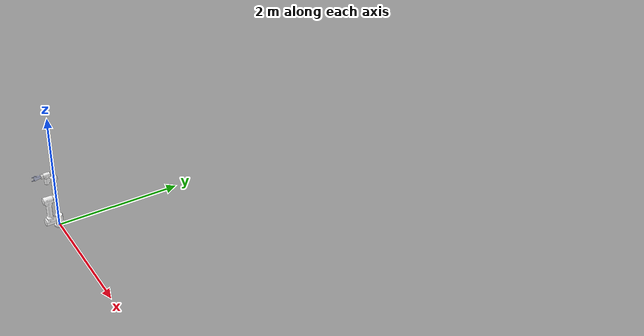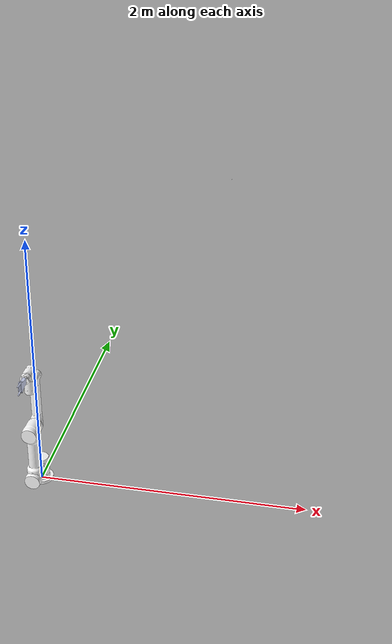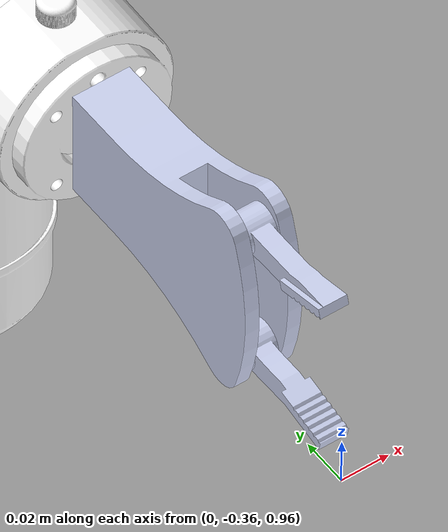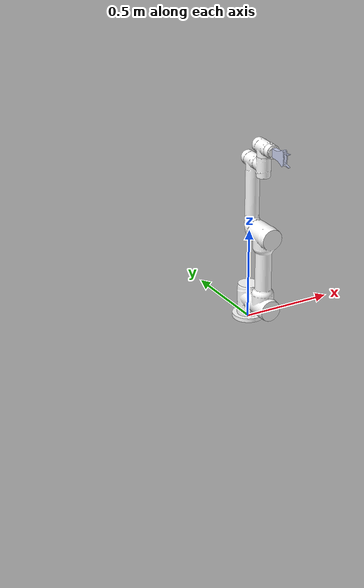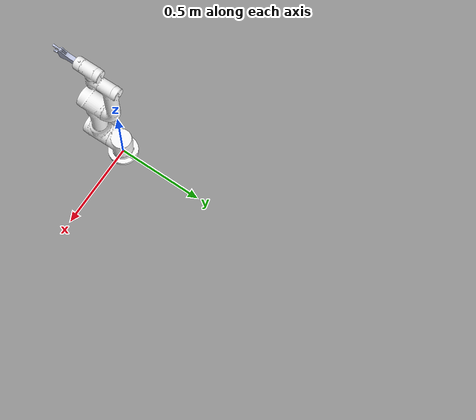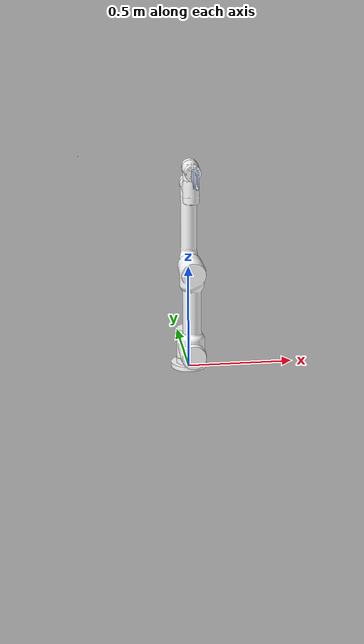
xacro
<?xml version="1.0"?>
<robot name="aubo_i5" xmlns:xacro="http://www.ros.org/wiki/xacro">
  <xacro:property name="M_PI" value="3.14159"/>

  <xacro:include filename="$(find aubo_description)/urdf/jiazhua.urdf" />
  <xacro:include filename="$(find aubo_description)/urdf/arm.xacro" />

    <joint name="ee_link_joint" type="fixed">
        <origin xyz="0 0 0" rpy="0 0 0 " />
        <parent link="wrist3_Link" />
        <child  link="gripper_base_link" />
    </joint>

</robot>

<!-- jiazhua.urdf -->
<robot name="jiazhua">

  <link name="gripper_base_link">
    <inertial>
      <origin xyz="0.0012 2.42861286636753E-17 0.0475830266682981" rpy="0 0 0" />
      <mass value="0.10588615547803" />
      <inertia
        ixx="0.000120405813410356"
        ixy="-3.77401154477319E-21"
        ixz="3.59933442415666E-21"
        iyy="9.48339427252608E-05"
        iyz="-1.11428968367808E-20"
        izz="3.86432252264647E-05" />
    </inertial>
    <visual>
      <origin xyz="0 0 0" rpy="0 0 0" />
      <geometry>
        <mesh filename="package://aubo_description/meshes/jiazhua/base_link.STL" />
      </geometry>
      <material name="jiazhua_bask_link_material">
        <color rgba="0.792156862745098 0.819607843137255 0.933333333333333 1" />
      </material>
    </visual>
    <collision>
      <origin  xyz="0 0 0" rpy="0 0 0" />
      <geometry>
        <mesh filename="package://aubo_description/meshes/jiazhua/base_link.STL" />
      </geometry>
    </collision>
  </link>
  <link  name="Link1">
    <inertial>
      <origin xyz="0.00188050176688574 -0.00120387769826689 0.0150298969423478" rpy="0 0 0" />
      <mass value="0.0054287821000724" />
      <inertia
        ixx="1.43577242109414E-06"
        ixy="9.68992808778747E-11"
        ixz="-2.28401464592307E-07"
        iyy="1.47943037043788E-06"
        iyz="4.56593730463517E-10"
        izz="1.48811775578354E-07" />
    </inertial>
    <visual>
      <origin xyz="0 0 0" rpy="0 0 0" />
      <geometry>
        <mesh filename="package://aubo_description/meshes/jiazhua/Link1.STL" />
      </geometry>
      <material name="link1_material">
        <color rgba="0.792156862745098 0.819607843137255 0.933333333333333 1" />
      </material>
    </visual>
    <collision>
      <origin xyz="0 0 0" rpy="0 0 0" />
      <geometry>
        <mesh filename="package://aubo_description/meshes/jiazhua/Link1.STL" />
      </geometry>
    </collision>
  </link>
  <!--
    The two fingers rotate about their local Y axes.  Because the finger joint
    frames have opposite yaw angles, equal positive joint commands produce a
    symmetric closing motion.
  -->
  <joint name="joint1" type="revolute">
    <origin xyz="0 -0.029 0.0892076231496363" rpy="0 -0.228448582107719 1.5707963267949" />
    <parent  link="gripper_base_link" />
    <child link="Link1" />
    <axis xyz="0 1 0" />
    <limit lower="0.0" upper="0.55" effort="20.0" velocity="1.0" />
    <dynamics damping="0.15" friction="0.05" />
  </joint>
  <link name="Link2">
    <inertial>
      <origin xyz="0.00184644766642264 0.00119612230173309 0.0148207361975697" rpy="0 0 0" />
      <mass  value="0.00542878210007239" />
      <inertia
        ixx="1.43577242109413E-06"
        ixy="9.68992808778728E-11"
        ixz="-2.28401464592308E-07"
        iyy="1.47943037043787E-06"
        iyz="4.56593730463535E-10"
        izz="1.48811775578354E-07" />
    </inertial>
    <visual>
      <origin xyz="0 0 0" rpy="0 0 0" />
      <geometry>
        <mesh filename="package://aubo_description/meshes/jiazhua/Link2.STL" />
      </geometry>
      <material name="link2_material">
        <color rgba="0.792156862745098 0.819607843137255 0.933333333333333 1" />
      </material>
    </visual>
    <collision>
      <origin xyz="0 0 0" rpy="0 0 0" />
      <geometry>
        <mesh filename="package://aubo_description/meshes/jiazhua/Link2.STL" />
      </geometry>
    </collision>
  </link>
  <joint name="joint2" type="revolute">
    <origin xyz="0 0.029 0.0892076231496363" rpy="0 -0.252554771757915 -1.5707963267949" />
    <parent link="gripper_base_link" />
    <child link="Link2" />
    <axis xyz="0 1 0" />
    <limit lower="0.0" upper="0.55" effort="20.0" velocity="1.0" />
    <dynamics damping="0.15" friction="0.05" />
  </joint>

  <joint name="gripper_joint" type="fixed">
      <origin xyz="0 0 0.12" rpy="0 0 0"/>
      <parent link="gripper_base_link"/>
      <child link="gripper_link"/>
  </joint>
  <link name="gripper_link" />

  <!-- Tool centre point between and slightly in front of the fingertips.
       Keep gripper_link for compatibility and use tcp_link as the MoveIt tip. -->
  <joint name="tcp_joint" type="fixed">
      <origin xyz="0 0 0" rpy="0 0 0"/>
      <parent link="gripper_link"/>
      <child link="tcp_link"/>
  </joint>
  <link name="tcp_link" />

  <!-- Contact parameters for grasping lightweight objects in Gazebo. -->
  <gazebo reference="Link1">
    <mu1>20.0</mu1>
    <mu2>20.0</mu2>
    <kp>1000000</kp>
    <kd>100</kd>
    <minDepth>0.002</minDepth>
    <maxVel>0.01</maxVel>
  </gazebo>
  <gazebo reference="Link2">
    <mu1>20.0</mu1>
    <mu2>20.0</mu2>
    <kp>1000000</kp>
    <kd>100</kd>
    <minDepth>0.002</minDepth>
    <maxVel>0.01</maxVel>
  </gazebo>

  <!-- ros_control transmissions used by Gazebo and compatible hardware interfaces. -->
  <transmission name="joint1_trans">
    <type>transmission_interface/SimpleTransmission</type>
    <joint name="joint1">
      <hardwareInterface>hardware_interface/PositionJointInterface</hardwareInterface>
    </joint>
    <actuator name="joint1_motor">
      <hardwareInterface>hardware_interface/PositionJointInterface</hardwareInterface>
      <mechanicalReduction>1</mechanicalReduction>
    </actuator>
  </transmission>
  <transmission name="joint2_trans">
    <type>transmission_interface/SimpleTransmission</type>
    <joint name="joint2">
      <hardwareInterface>hardware_interface/PositionJointInterface</hardwareInterface>
    </joint>
    <actuator name="joint2_motor">
      <hardwareInterface>hardware_interface/PositionJointInterface</hardwareInterface>
      <mechanicalReduction>1</mechanicalReduction>
    </actuator>
  </transmission>
</robot>

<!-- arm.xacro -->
<robot name="aubo_i5" xmlns:xacro="http://ros.org/wiki/xacro">

 <!-- Defining the colors used in this robot -->
    <material name="Black">
        <color rgba="0 0 0 1"/>
    </material>

    <material name="White">
        <color rgba="1 1 1 1"/>
    </material>

    <material name="Blue">
        <color rgba="0 0 1 1"/>
    </material>

    <material name="Red">
        <color rgba="1 0 0 1"/>
    </material>

    <material name="Grey">
        <color rgba="0.96 0.96 0.96 1"/>
    </material>

    <!-- Constants -->
    <xacro:property name="M_PI" value="3.14159"/>

    <!--/////////////////// DYNAMICS PARAM //////////////////////-->

    <xacro:macro name="I5_Shoulder_Inertia">
        <origin xyz="0.0 0.006 -0.002"
                rpy="0 0 0" />
        <mass value="5.05" />
        <inertia ixx="0.0148"
                 ixy="0"
                 ixz="0"
                 iyy="0.0143"
                 iyz="-0.0"
                 izz="0.0095" />
    </xacro:macro>

    <xacro:macro name="I5_UpperArm_Inertia">
        <origin xyz="0.304 0.0 -0.03"
                rpy="0 0 0" />
        <mass value="11.90" />
        <inertia ixx="0.0305"
                 ixy="0"
                 ixz="0"
                 iyy="0.4505"
                 iyz="0"
                 izz="0.0095" />
    </xacro:macro>

    <xacro:macro name="I5_ForeArm_Inertia">
        <origin xyz="0.415 0.0 0.0992"
                rpy="0 0 0" />
        <mass  value="3.3" />
        <inertia ixx="0.0033"
                 ixy="0"
                 ixz="0.0009"
                 iyy="0.0575"
                 iyz="0"
                 izz="0.0565" />
    </xacro:macro>

    <xacro:macro name="I5_Wrist1_Inertia">
        <origin xyz="0.0 0.0028 -0.003"
                rpy="0 0 0" />
        <mass value="1.62" />
        <inertia ixx="0.0023"
                 ixy="0"
                 ixz="0"
                 iyy="0.0013"
                 iyz="0.0"
                 izz="0.0022" />
    </xacro:macro>

    <xacro:macro name="I5_Wrist2_Inertia">
        <origin xyz="0.0 -0.0028 -0.003"
                rpy="0 0 0" />
        <mass value="1.62" />
        <inertia ixx="0.0023"
                 ixy="0"
                 ixz="0"
                 iyy="0.0013"
                 iyz="0.0"
                 izz="0.0022" />
    </xacro:macro>

    <xacro:macro name="I5_Wrist3_Inertia">
        <origin xyz="0.0 0.0 -0.0071"
                rpy="0 0 0" />
        <mass value="0.40" />
        <inertia ixx="0.013939"
                 ixy="0"
                 ixz="0"
                 iyy="0.013988"
                 iyz="0.0"
                 izz="0.0224092" />
    </xacro:macro>

    <!--/////////////////////////////// BASE_LINK ////////////////////////////////////-->

   <link name="base_link">
    <inertial>
      <origin xyz="-1.4795E-13 0.0015384 0.020951" rpy="0 0 0" />
      <mass value="0.83419" />
      <inertia ixx="0.0014414" ixy="7.8809E-15" ixz="8.5328E-16" iyy="0.0013542" iyz="-1.4364E-05" izz="0.0024659" />
    </inertial>
    <visual>
      <origin xyz="0 0 0" rpy="0 0 0" />
      <geometry>
        <mesh filename="package://aubo_description/meshes/aubo_i5/visual/base_link.DAE" />
      </geometry>
      <material name="">
        <color rgba="1 1 1 1" />
      </material>
    </visual>
    <collision>
      <origin xyz="0 0 0" rpy="0 0 0" />
      <geometry>
        <mesh filename="package://aubo_description/meshes/aubo_i5/collision/base_link.STL" />
      </geometry>
    </collision>
  </link>

  <!--/////////////////////////////// SHOULDER_LINK ////////////////////////////////////-->
  <link name="shoulder_Link">
    <inertial>
      <xacro:I5_Shoulder_Inertia />
    </inertial>
    <visual>
      <origin xyz="0 0 0" rpy="0 0 0" />
      <geometry>
        <mesh filename="package://aubo_description/meshes/aubo_i5/visual/shoulder_Link.DAE" />
      </geometry>
      <material name="">
        <color rgba="1 1 1 1" />
      </material>
    </visual>
    <collision>
      <origin xyz="0 0 0" rpy="0 0 0" />
      <geometry>
        <mesh filename="package://aubo_description/meshes/aubo_i5/collision/shoulder_Link.STL" />
      </geometry>
    </collision>
  </link>

  <!--/////////////////////////////// SHOULDER_JOINT ////////////////////////////////////-->
  <joint name="shoulder_joint" type="revolute">
    <origin xyz="0 0 0.122" rpy="0 0 3.1416" />
    <parent link="base_link" />
    <child link="shoulder_Link" />
    <axis xyz="0 0 1" />
    <limit lower="-3.04" upper="3.04" effort="300" velocity="100" />
  </joint>

  <!--/////////////////////////////// UPPERARM_LINK ////////////////////////////////////-->
  <link name="upperArm_Link">
    <inertial>
      <xacro:I5_UpperArm_Inertia />
    </inertial>
    <visual>
      <origin xyz="0 0 0" rpy="0 0 0" />
      <geometry>
        <mesh filename="package://aubo_description/meshes/aubo_i5/visual/upperArm_Link.DAE" />
      </geometry>
      <material name="">
        <color rgba="1 1 1 1" />
      </material>
    </visual>
    <collision>
      <origin xyz="0 0 0" rpy="0 0 0" />
      <geometry>
        <mesh filename="package://aubo_description/meshes/aubo_i5/collision/upperArm_Link.STL" />
      </geometry>
    </collision>
  </link>

  <!--/////////////////////////////// UPPERARM_JOINT ////////////////////////////////////-->
  <joint name="upperArm_joint" type="revolute">
    <origin xyz="0 0.1215 0" rpy="-1.5708 -1.5708 0" />
    <parent link="shoulder_Link" />
    <child link="upperArm_Link" />
    <axis xyz="0 0 1" />
    <limit lower="-3.04" upper="3.04" effort="300" velocity="100" />
  </joint>

  <!--/////////////////////////////// FOREARM_LINK ////////////////////////////////////-->
  <link name="foreArm_Link">
    <inertial>
      <xacro:I5_ForeArm_Inertia />
    </inertial>
    <visual>
      <origin xyz="0 0 0" rpy="0 0 0" />
      <geometry>
        <mesh filename="package://aubo_description/meshes/aubo_i5/visual/foreArm_Link.DAE" />
      </geometry>
      <material name="">
        <color rgba="1 1 1 1" />
      </material>
    </visual>
    <collision>
      <origin xyz="0 0 0" rpy="0 0 0" />
      <geometry>
        <mesh filename="package://aubo_description/meshes/aubo_i5/collision/foreArm_Link.STL" />
      </geometry>
    </collision>
  </link>

  <!--/////////////////////////////// FOREARM_JOINT ////////////////////////////////////-->
  <joint name="foreArm_joint" type="revolute">
    <origin xyz="0.408 0 0" rpy="-3.1416 -5.1632E-18 -5.459E-16" />
    <parent link="upperArm_Link" />
    <child link="foreArm_Link" />
    <axis xyz="0 0 1" />
    <limit lower="-3.04" upper="3.04" effort="300" velocity="100" />
  </joint>

  <!--/////////////////////////////// WRIST1_LINK ////////////////////////////////////-->
  <link name="wrist1_Link">
    <inertial>
      <xacro:I5_Wrist1_Inertia />
    </inertial>
    <visual>
      <origin xyz="0 0 0" rpy="0 0 0" />
      <geometry>
        <mesh filename="package://aubo_description/meshes/aubo_i5/visual/wrist1_Link.DAE" />
      </geometry>
      <material name="">
        <color rgba="1 1 1 1" />
      </material>
    </visual>
    <collision>
      <origin xyz="0 0 0" rpy="0 0 0" />
      <geometry>
        <mesh filename="package://aubo_description/meshes/aubo_i5/collision/wrist1_Link.STL" />
      </geometry>
    </collision>
  </link>

  <!--/////////////////////////////// WRIST1_JOINT ////////////////////////////////////-->
  <joint name="wrist1_joint" type="revolute">
    <origin xyz="0.376 0 0" rpy="3.1416 -1.8323E-15 1.5708" />
    <parent link="foreArm_Link" />
    <child link="wrist1_Link" />
    <axis xyz="0 0 1" />
    <limit lower="-3.04" upper="3.04" effort="300" velocity="100" />
  </joint>

  <!--/////////////////////////////// WRIST2_LINK ////////////////////////////////////-->
  <link name="wrist2_Link">
    <inertial>
      <xacro:I5_Wrist2_Inertia />
    </inertial>
    <visual>
      <origin xyz="0 0 0" rpy="0 0 0" />
      <geometry>
        <mesh filename="package://aubo_description/meshes/aubo_i5/visual/wrist2_Link.DAE" />
      </geometry>
      <material name="">
        <color rgba="1 1 1 1" />
      </material>
    </visual>
    <collision>
      <origin xyz="0 0 0" rpy="0 0 0" />
      <geometry>
        <mesh filename="package://aubo_description/meshes/aubo_i5/collision/wrist2_Link.STL" />
      </geometry>
    </collision>
  </link>

  <!--/////////////////////////////// WRIST2_JOINT ////////////////////////////////////-->
  <joint name="wrist2_joint" type="revolute">
    <origin xyz="0 0.1025 0" rpy="-1.5708 -1.8709E-15 -1.6653E-16" />
    <parent link="wrist1_Link" />
    <child link="wrist2_Link" />
    <axis xyz="0 0 1" />
    <limit lower="-3.04" upper="3.04" effort="300" velocity="100" />
  </joint>

  <!--/////////////////////////////// WRIST3_LINK ////////////////////////////////////-->
  <link name="wrist3_Link">
    <inertial>
      <xacro:I5_Wrist3_Inertia />
    </inertial>
    <visual>
      <origin xyz="0 0 0" rpy="0 0 0" />
      <geometry>
        <mesh filename="package://aubo_description/meshes/aubo_i5/visual/wrist3_Link.DAE" />
      </geometry>
      <material name="">
        <color rgba="1 1 1 1" />
      </material>
    </visual>
    <collision>
      <origin xyz="0 0 0" rpy="0 0 0" />
      <geometry>
        <mesh filename="package://aubo_description/meshes/aubo_i5/collision/wrist3_Link.STL" />
      </geometry>
    </collision>
  </link>

  <!--/////////////////////////////// WRIST3_JOINT ////////////////////////////////////-->
  <joint name="wrist3_joint" type="revolute">
    <origin xyz="0 -0.094 0" rpy="1.5708 0 1.7907E-15" />
    <parent link="wrist2_Link" />
    <child link="wrist3_Link" />
    <axis xyz="0 0 1" />
    <limit lower="-3.04" upper="3.04" effort="300" velocity="100" />
  </joint>

 <!-- /////////////////////////////////   world   ////////////////////////////////////// -->
  <link name="world" />

  <joint name="world_joint" type="fixed">
    <parent link="world" />
    <child link ="base_link" />
    <origin xyz="0.0 0.0 0.0" rpy="0.0 0.0 0.0" />
  </joint>

  <!-- /////////////////////////////////   gazebo color   ////////////////////////////////////// -->

  <!--////////////////////////////////// Transmissions for ROS Control //////////////////////////-->

<xacro:macro name="aubo_arm_transmission" params="joint_name">
     <transmission name="${joint_name}_trans">
       <type>transmission_interface/SimpleTransmission</type>
       <joint name="${joint_name}">
         <hardwareInterface>hardware_interface/PositionJointInterface</hardwareInterface>
       </joint>
       <actuator name="${joint_name}_motor">
	 <hardwareInterface>hardware_interface/PositionJointInterface</hardwareInterface>
         <mechanicalReduction>1</mechanicalReduction>
       </actuator>
     </transmission>
 </xacro:macro>

  <xacro:aubo_arm_transmission joint_name="shoulder_joint"/>
  <xacro:aubo_arm_transmission joint_name="upperArm_joint"/>
  <xacro:aubo_arm_transmission joint_name="foreArm_joint"/>
  <xacro:aubo_arm_transmission joint_name="wrist1_joint"/>
  <xacro:aubo_arm_transmission joint_name="wrist2_joint"/>
  <xacro:aubo_arm_transmission joint_name="wrist3_joint"/>

  <!-- ros_control plugin -->
  <gazebo>
      <plugin name="gazebo_ros_control" filename="libgazebo_ros_control.so">
          <robotNamespace>/aubo_i5</robotNamespace>
	  <robotSimType>gazebo_ros_control/DefaultRobotHWSim</robotSimType>
          <legacyModeNS>true</legacyModeNS>
      </plugin>
  </gazebo>

</robot>
